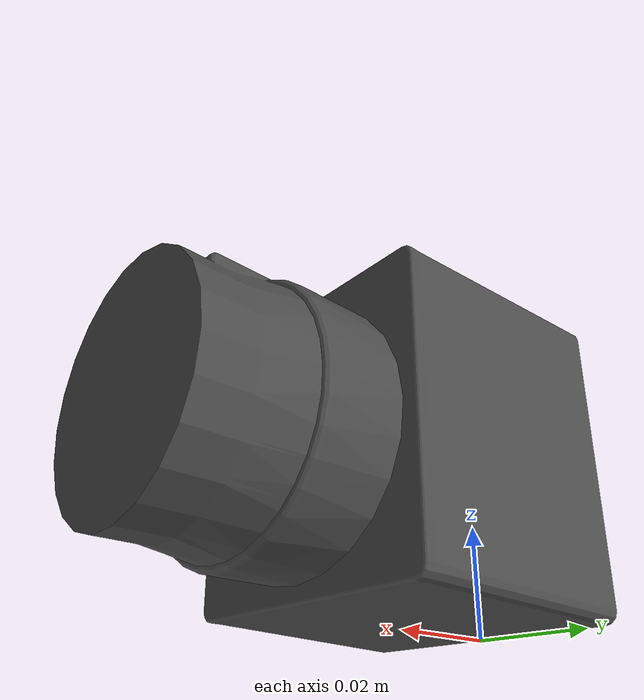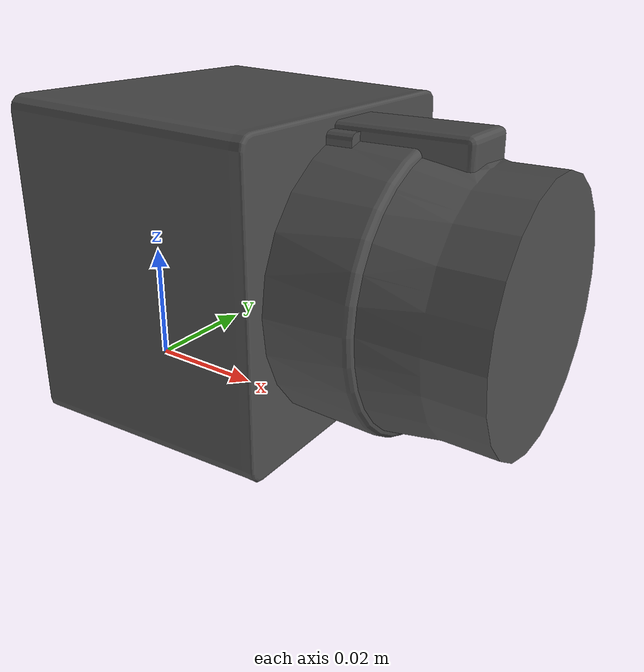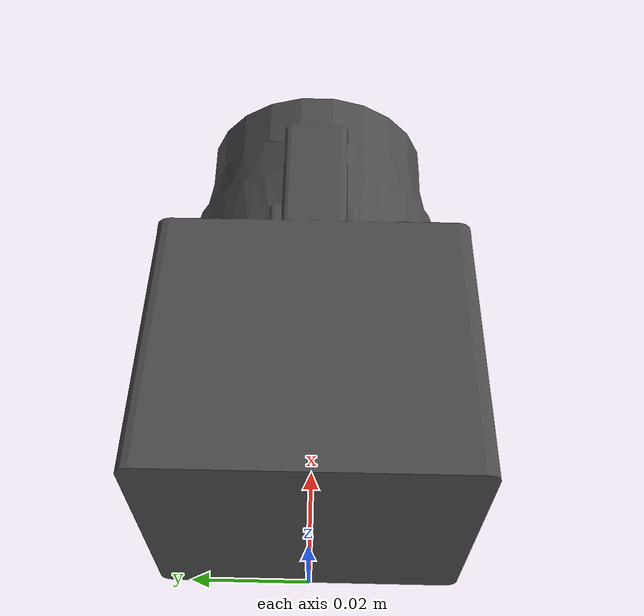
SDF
<?xml version='1.0'?>
<sdf version='1.6'>
	<model name='stalya_cam'>
		<pose>0 0 0.025 0 0 0</pose>
		<link name='link'>
			<inertial>
				<pose>0.029 0 0 0 0 0</pose>
				<mass>0.1</mass>
				<inertia>
					<ixx>3.40432628e-05</ixx>
					<ixy>0</ixy>
					<ixz>0</ixz>
					<iyy>5.40015898e-05</iyy>
					<iyz>0</iyz>
					<izz>5.38136158e-05</izz>
				</inertia>
			</inertial>
			<collision name='collision'>
				<pose>0 0 0.025 0 0 0</pose>
				<geometry>
					<box>
						<size>0.07 0.05 0.05</size>
					</box>
				</geometry>
				<max_contacts>10</max_contacts>
				<surface>
					<contact>
						<ode/>
					</contact>
					<bounce/>
					<friction>
						<ode/>
					</friction>
				</surface>
			</collision>
			<visual name='visual'>
				<pose>0 0 0 0 0 0</pose>
				<geometry>
					<mesh>
						<uri>model://stalya_cam/meshes/camera.stl</uri>
					</mesh>
				</geometry>
				<material>
					<lighting>1</lighting>
					<script>
						<name>Gazebo/DarkGrey</name>
						<uri>file://media/materials/scripts/gazebo.material</uri>
					</script>
					<shader type='pixel'>
						<normal_map>__default__</normal_map>
					</shader>
				</material>
			</visual>
			<sensor name='camera' type='camera'>
				<camera name='__default__'>
					<horizontal_fov>1.047</horizontal_fov>
					<image>
						<width>320</width>
						<height>240</height>
					</image>
					<clip>
						<near>0.1</near>
						<far>100</far>
					</clip>
					<lens>
						<type>custom</type>
						<custom_function>
							<c1>1.05</c1>
							<c2>4</c2>
							<f>1</f>
							<fun>tan</fun>
						</custom_function>
						<scale_to_hfov>1</scale_to_hfov>
						<cutoff_angle>3.1415</cutoff_angle>
						<env_texture_size>1080</env_texture_size>
					</lens>
				</camera>
				<always_on>1</always_on>
				<update_rate>30</update_rate>
				<visualize>1</visualize>
				<plugin name="GstCameraPlugin" filename="libgazebo_gst_camera_plugin.so">
					<robotNamespace></robotNamespace>
					<udpHost>192.168.253.1</udpHost>
					<udpPort>5600</udpPort>
				</plugin>
			</sensor>
			<self_collide>0</self_collide>
			<kinematic>0</kinematic>
		</link>
	</model>
</sdf>
